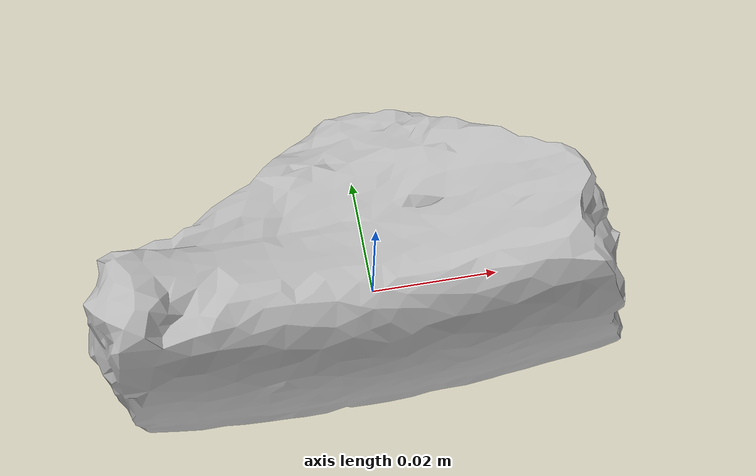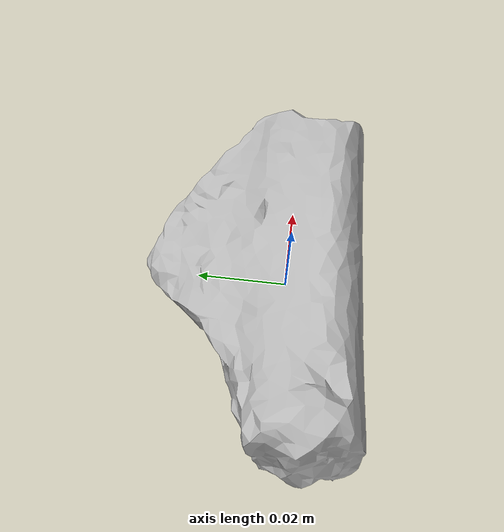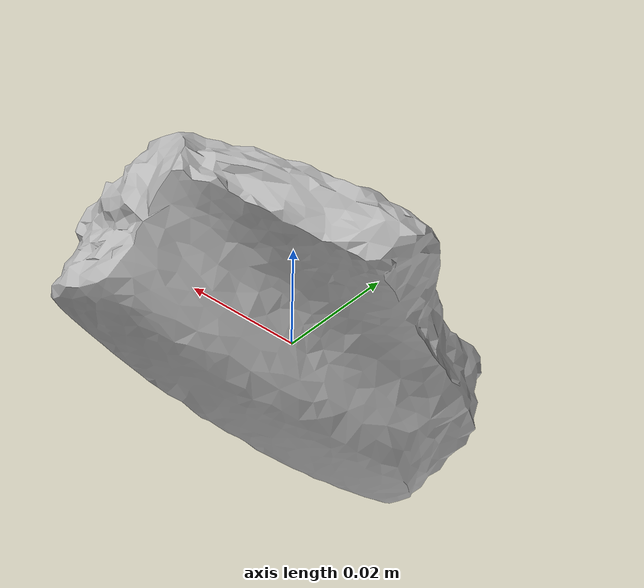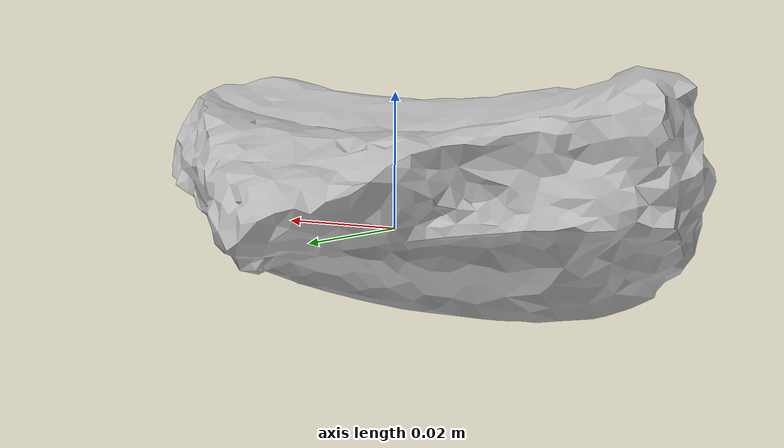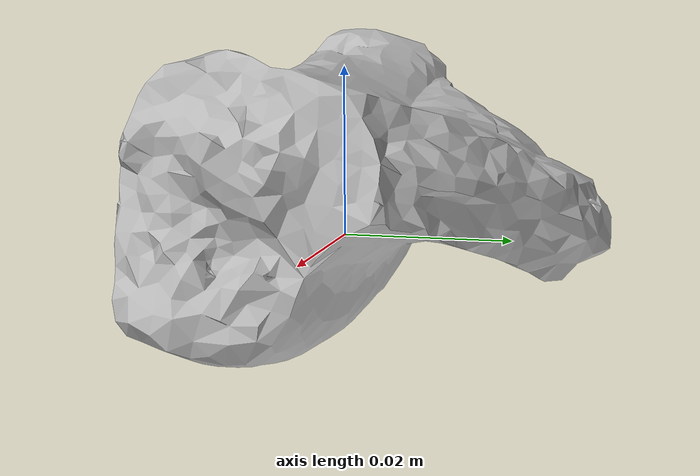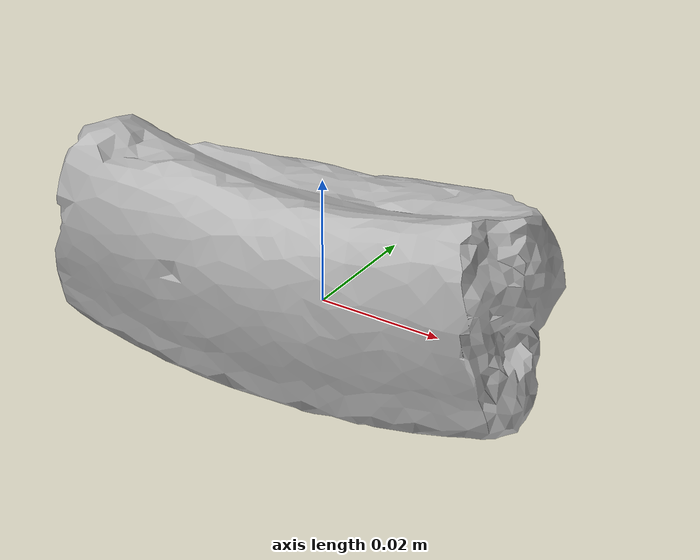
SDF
<?xml version="1.0" ?>
<sdf version="1.5">

  <model name='sherd_b'>
    <pose frame=''>0 0 0 0 0 0</pose>
    <static>false</static> <!-- mass is ignored for static models -->
    <link name='sherd_b_link'>
      <pose frame=''>0 0 0.005 0 0 0</pose>
      <inertial>
        <mass>0.266</mass>
        <inertia>
          <ixx>4.062088e-05</ixx>
          <ixy>-7.599255999999999e-06</ixy>
          <ixz>-1.1300795e-06</ixz>
          <iyy>0.00012027606949999999</iyy>
          <iyz>-3.0143439999999996e-06</iyz>
          <izz>0.00013008792099999998</izz>
        </inertia>
      </inertial>
      <collision name='collision'> <!-- .dae mesh for collision falls through the blue mat; .stl avoids this -->
        <geometry>
          <mesh>
            <uri>model://sherd_b/meshes/sherd_b.stl</uri>
            <scale>1 1 1</scale>
          </mesh>
        </geometry>
        <surface>
          <contact>
            <poissons_ratio>0.15</poissons_ratio>
            <elastic_modulus>8e+10</elastic_modulus>
            <ode>
              <kp>100000</kp>
              <kd>100</kd>
              <max_vel>100</max_vel>
              <min_depth>0.001</min_depth>
            </ode>
          </contact>
          <friction>
            <torsional>
              <coefficient>1</coefficient>
            </torsional>
            <ode>
              <mu>1.0</mu>
              <mu2>1.0</mu2>
              <fdir1>1 0 0</fdir1> <!-- specify in x dir to prevent slipping on mat AND in gripper. Gazebo automatically picks fdir2 as vector normal to applied force on surface -->
            </ode>
          </friction>
          <bounce/>
        </surface>
        <max_contacts>10</max_contacts>
      </collision>
      <visual name='visual'>
        <geometry>
          <mesh>
            <uri>model://sherd_b/meshes/sherd_b.stl</uri>
            <scale>1 1 1</scale>
          </mesh>
        </geometry>
        <material>
          <script>
            <uri>model://sherd_b/materials/scripts</uri>
            <uri>model://sherd_b/materials/textures</uri>
            <name>sherdMat/b</name>
          </script>
        </material>
      </visual>
      <self_collide>0</self_collide>
      <kinematic>0</kinematic>
      <gravity>1</gravity>
    </link>
  </model>
</sdf>
